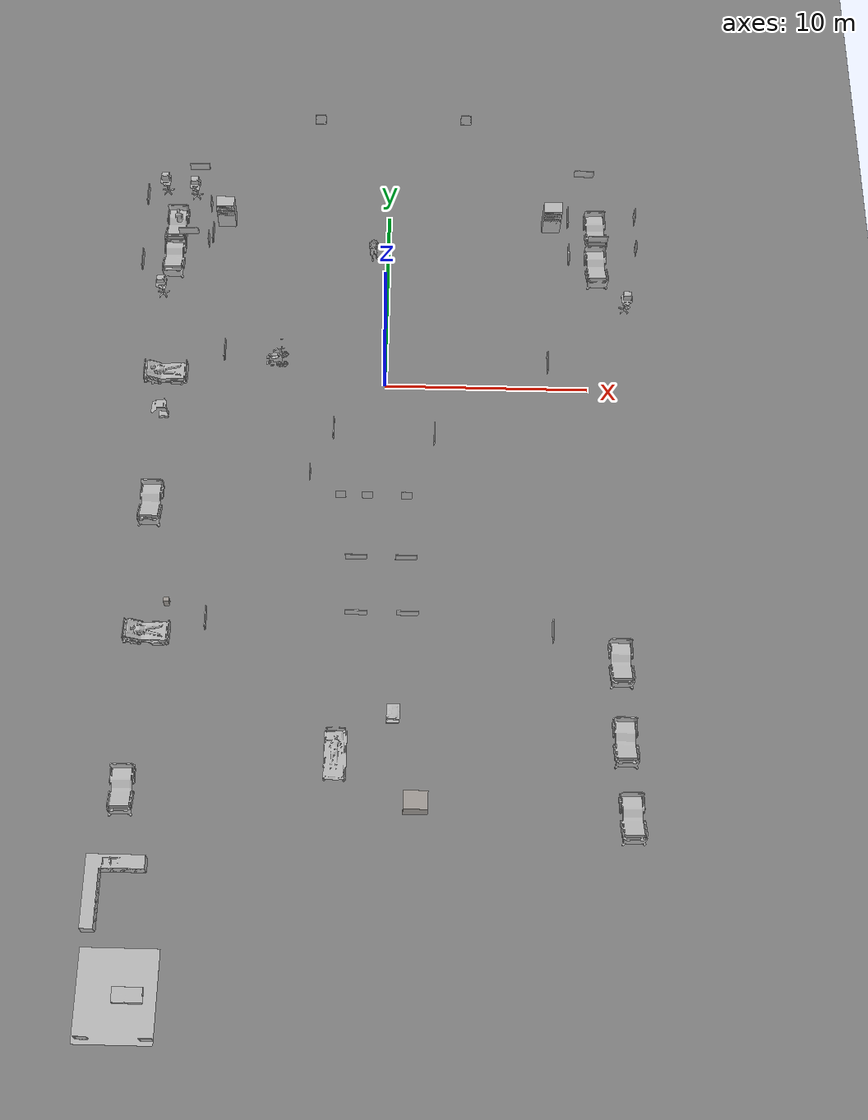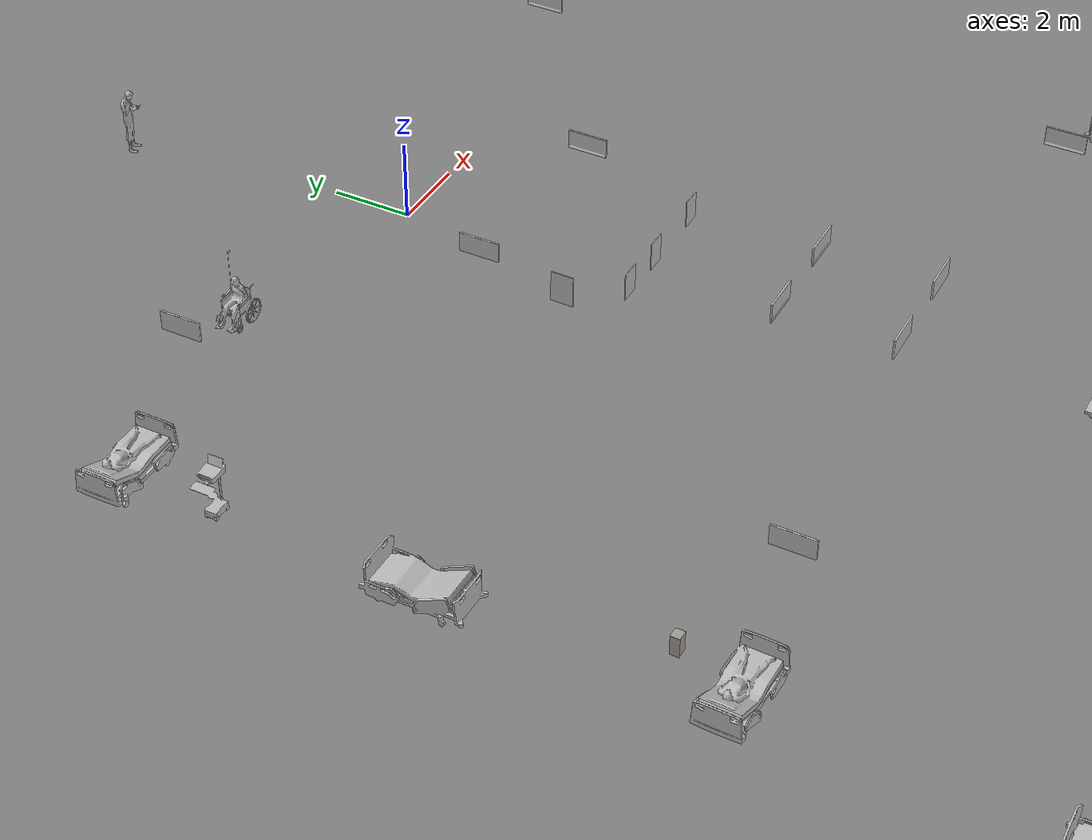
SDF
<sdf version="1.9">
 <world name="hospital">
  <physics name="4ms" type="ignored">
   <max_step_size>0.004</max_step_size>
   <real_time_factor>1</real_time_factor>
   <real_time_update_rate>250</real_time_update_rate>
  </physics>
  <plugin name="ignition::gazebo::systems::Physics" filename="ignition-gazebo-physics-system"/>
  <plugin name="ignition::gazebo::systems::UserCommands" filename="ignition-gazebo-user-commands-system"/>
  <plugin name="ignition::gazebo::systems::SceneBroadcaster" filename="ignition-gazebo-scene-broadcaster-system"/>
  <plugin name="ignition::gazebo::systems::Sensors" filename="ignition-gazebo-sensors-system">
   <render_engine>ogre2</render_engine>
  </plugin>
  <gravity>0 0 -9.8</gravity>
  <magnetic_field>6e-06 2.3e-05 -4.2e-05</magnetic_field>
  <atmosphere type="adiabatic"/>
  <scene><ambient>0.6 0.6 0.6 1</ambient><background>0.4 0.4 0.4 1</background><shadows>true</shadows></scene>
  <light name="sun" type="directional">
   <pose>0 0 10 0 0 0</pose>
   <intensity>1</intensity>
   <direction>-0.5 0.1 -0.9</direction>
   <diffuse>0.8 0.8 0.8 1</diffuse>
   <specular>0.2 0.2 0.2 1</specular>
   <attenuation>
    <range>1000</range>
    <linear>0.01</linear>
    <constant>0.9</constant>
    <quadratic>0.001</quadratic>
   </attenuation>
  </light>
  <model name="ground_plane">
   <static>true</static>
   <link name="link">
    <collision name="collision">
     <geometry><plane><normal>0 0 1</normal><size>100 100</size></plane></geometry>
     <surface><friction><ode><mu>100</mu><mu2>50</mu2></ode></friction></surface>
    </collision>
    <visual name="visual">
     <geometry><plane><normal>0 0 1</normal><size>100 100</size></plane></geometry>
     <material>
      <ambient>0.5 0.5 0.5 1</ambient>
      <diffuse>0.5 0.5 0.5 1</diffuse>
      <specular>0.1 0.1 0.1 1</specular>
     </material>
    </visual>
   </link>
  </model>
  <include>
   <uri>model://CGMClassic</uri>
   <name>CGMClassic_1</name>
   <static>true</static>
   <pose>11.1777 -18.4129 0 0 0 -3.13719</pose>
  </include>
  <include>
   <uri>model://CGMClassic</uri>
   <name>CGMClassic_2</name>
   <static>true</static>
   <pose>11.1179 -14.6493 0 0 0 -3.13599</pose>
  </include>
  <include>
   <uri>model://PatientWheelChair</uri>
   <name>PatientWheelChair_1</name>
   <static>true</static>
   <pose>-5.46091 1.23577 0 0 0 -1.54828</pose>
  </include>
  <include>
   <uri>model://CGMClassic</uri>
   <name>CGMClassic_3</name>
   <static>true</static>
   <pose>-11.2304 -21.1134 0 0 0 -3.11834</pose>
  </include>
  <include>
   <uri>model://aws_robomaker_residential_CoffeeTable_01</uri>
   <name>aws_robomaker_residential_CoffeeTable_01_1</name>
   <static>true</static>
   <pose>-10.2383 -29.9144 0 0 0 0</pose>
  </include>
  <include>
   <uri>model://aws_robomaker_residential_KitchenCabinet_01</uri>
   <name>aws_robomaker_residential_KitchenCabinet_01_1</name>
   <static>true</static>
   <pose>-11.1379 -25.6941 0 0 0 0</pose>
  </include>
  <include>
   <uri>model://aws_robomaker_residential_PortraitA_01</uri>
   <name>aws_robomaker_residential_PortraitA_01_1</name>
   <static>true</static>
   <pose>1.14738 -6.92303 1.41115 0 0 0</pose>
  </include>
  <include>
   <uri>model://aws_robomaker_residential_PortraitD_02</uri>
   <name>aws_robomaker_residential_PortraitD_02_1</name>
   <static>true</static>
   <pose>2.40772 -3.61975 1.54508 0 0 -1.57619</pose>
  </include>
  <include>
   <uri>model://aws_robomaker_residential_PortraitA_01</uri>
   <name>aws_robomaker_residential_PortraitA_01_2</name>
   <static>true</static>
   <pose>-0.706092 -6.93108 1.41115 0 0 0</pose>
  </include>
  <include>
   <uri>model://aws_robomaker_residential_PortraitA_01</uri>
   <name>aws_robomaker_residential_PortraitA_01_3</name>
   <static>true</static>
   <pose>-1.97245 -6.9216 1.41115 0 0 0</pose>
  </include>
  <include>
   <uri>model://aws_robomaker_residential_PortraitD_02</uri>
   <name>aws_robomaker_residential_PortraitD_02_2</name>
   <static>true</static>
   <pose>-2.43341 -3.38621 1.54508 0 0 1.57083</pose>
  </include>
  <include>
   <uri>model://ElderLadyPatient</uri>
   <name>ElderLadyPatient_1</name>
   <static>true</static>
   <pose>-10.9972 0.231354 0.001654 0 0 0</pose>
  </include>
  <include>
   <uri>model://ElderLadyPatient</uri>
   <name>ElderLadyPatient_2</name>
   <static>true</static>
   <pose>-10.8133 -13.5925 0.001657 0 0 -0.025052</pose>
  </include>
  <include>
   <uri>model://CGMClassic</uri>
   <name>CGMClassic_4</name>
   <static>true</static>
   <pose>-11.0878 -7.00992 0 0 0 3.1351</pose>
  </include>
  <include>
   <uri>model://aws_robomaker_residential_PortraitE_01</uri>
   <name>aws_robomaker_residential_PortraitE_01_1</name>
   <static>true</static>
   <pose>-9.06141 -31.9238 1.38136 0 0 0</pose>
  </include>
  <include>
   <uri>model://aws_robomaker_residential_PortraitE_01</uri>
   <name>aws_robomaker_residential_PortraitE_01_2</name>
   <static>true</static>
   <pose>-11.7398 -31.9011 1.38136 0 0 0</pose>
  </include>
  <include>
   <uri>model://aws_robomaker_residential_Carpet_01</uri>
   <name>aws_robomaker_residential_Carpet_01_1</name>
   <static>true</static>
   <pose>-10.7338 -29.9243 0 0 0 0</pose>
  </include>
  <include>
   <uri>model://CGMClassic</uri>
   <name>CGMClassic_5</name>
   <static>true</static>
   <pose>-11.0106 8.9505 -0.008203 -0.035019 -0.000392 3.13388</pose>
  </include>
  <include>
   <uri>model://CGMClassic</uri>
   <name>CGMClassic_6</name>
   <static>true</static>
   <pose>-11.025 7.10335 0 -0.035021 1.8e-05 -3.13762</pose>
  </include>
  <include>
   <uri>model://TrolleyBedPatient</uri>
   <name>TrolleyBedPatient_1</name>
   <static>true</static>
   <pose>-1.83202 -19.2612 0 0 0 0</pose>
  </include>
  <include>
   <uri>model://aws_robomaker_residential_PortraitD_01</uri>
   <name>aws_robomaker_residential_PortraitD_01_1</name>
   <static>true</static>
   <pose>-1.14723 -10.143 1.57344 0 0 0</pose>
  </include>
  <include>
   <uri>model://aws_robomaker_residential_PortraitD_01</uri>
   <name>aws_robomaker_residential_PortraitD_01_2</name>
   <static>true</static>
   <pose>1.16956 -10.1327 1.57344 0 0 0</pose>
  </include>
  <include>
   <uri>model://aws_robomaker_residential_PortraitD_01</uri>
   <name>aws_robomaker_residential_PortraitD_01_3</name>
   <static>true</static>
   <pose>1.2703 -12.9084 1.57344 0 0 -3.14134</pose>
  </include>
  <include>
   <uri>model://aws_robomaker_residential_PortraitD_01</uri>
   <name>aws_robomaker_residential_PortraitD_01_4</name>
   <static>true</static>
   <pose>-1.06108 -12.9155 1.57344 0 0 -3.14134</pose>
  </include>
  <include>
   <uri>model://aws_robomaker_residential_PortraitD_02</uri>
   <name>aws_robomaker_residential_PortraitD_02_3</name>
   <static>true</static>
   <pose>7.89294 -13.6155 1.54508 0 0 -1.57619</pose>
  </include>
  <include>
   <uri>model://aws_robomaker_residential_PortraitD_02</uri>
   <name>aws_robomaker_residential_PortraitD_02_4</name>
   <static>true</static>
   <pose>7.88791 0.445446 1.54508 0 0 -1.57619</pose>
  </include>
  <include>
   <uri>model://aws_robomaker_residential_PortraitD_02</uri>
   <name>aws_robomaker_residential_PortraitD_02_5</name>
   <static>true</static>
   <pose>-7.92095 0.84255 1.54508 0 0 1.57083</pose>
  </include>
  <include>
   <uri>model://aws_robomaker_residential_PortraitD_02</uri>
   <name>aws_robomaker_residential_PortraitD_02_6</name>
   <static>true</static>
   <pose>-7.90937 -13.3417 1.54508 0 0 1.57083</pose>
  </include>
  <include>
   <uri>model://aws_robomaker_residential_PortraitD_02</uri>
   <name>aws_robomaker_residential_PortraitD_02_7</name>
   <static>true</static>
   <pose>-12.3841 6.01232 1.54508 0 0 1.57083</pose>
  </include>
  <include>
   <uri>model://aws_robomaker_residential_PortraitD_02</uri>
   <name>aws_robomaker_residential_PortraitD_02_8</name>
   <static>true</static>
   <pose>-12.4276 9.98828 1.54508 0 0 1.57083</pose>
  </include>
  <include>
   <uri>model://aws_robomaker_residential_PortraitE_02</uri>
   <name>aws_robomaker_residential_PortraitE_02_1</name>
   <static>true</static>
   <pose>-9.08927 9.19494 1.84129 0 0 -1.5625</pose>
  </include>
  <include>
   <uri>model://aws_robomaker_residential_PortraitD_02</uri>
   <name>aws_robomaker_residential_PortraitD_02_9</name>
   <static>true</static>
   <pose>-8.94468 7.73571 1.54508 0 0 1.57083</pose>
  </include>
  <include>
   <uri>model://aws_robomaker_residential_PortraitE_02</uri>
   <name>aws_robomaker_residential_PortraitE_02_2</name>
   <static>true</static>
   <pose>-9.08305 7.04089 1.84129 0 0 -1.5625</pose>
  </include>
  <include>
   <uri>model://aws_robomaker_residential_PortraitD_01</uri>
   <name>aws_robomaker_residential_PortraitD_01_5</name>
   <static>true</static>
   <pose>-9.9148 11.9172 1.40573 0 0 0</pose>
  </include>
  <include>
   <uri>model://aws_robomaker_residential_PortraitD_01</uri>
   <name>aws_robomaker_residential_PortraitD_01_6</name>
   <static>true</static>
   <pose>-10.2134 7.89752 1.40573 0 0 0</pose>
  </include>
  <include>
   <uri>model://CGMClassic</uri>
   <name>CGMClassic_7</name>
   <static>true</static>
   <pose>10.6166 9.06291 -0.008203 -0.03501 0.000885 -3.11285</pose>
  </include>
  <include>
   <uri>model://CGMClassic</uri>
   <name>CGMClassic_8</name>
   <static>true</static>
   <pose>10.6006 6.90956 -0.008203 -0.035003 0.001133 -3.10576</pose>
  </include>
  <include>
   <uri>model://aws_robomaker_residential_PortraitD_02</uri>
   <name>aws_robomaker_residential_PortraitD_02_10</name>
   <static>true</static>
   <pose>9.06517 6.78742 1.54508 0 0 1.57083</pose>
  </include>
  <include>
   <uri>model://aws_robomaker_residential_PortraitD_02</uri>
   <name>aws_robomaker_residential_PortraitD_02_11</name>
   <static>true</static>
   <pose>9.06517 9.05858 1.54508 0 0 1.57083</pose>
  </include>
  <include>
   <uri>model://aws_robomaker_residential_PortraitE_02</uri>
   <name>aws_robomaker_residential_PortraitE_02_3</name>
   <static>true</static>
   <pose>12.3972 6.98849 1.84129 0 0 -1.5625</pose>
  </include>
  <include>
   <uri>model://aws_robomaker_residential_PortraitE_02</uri>
   <name>aws_robomaker_residential_PortraitE_02_4</name>
   <static>true</static>
   <pose>12.3972 8.87466 1.84129 0 0 -1.5625</pose>
  </include>
  <include>
   <uri>model://aws_robomaker_residential_PortraitE_02</uri>
   <name>aws_robomaker_residential_PortraitE_02_5</name>
   <static>true</static>
   <pose>-3.4385 -6.00525 1.84129 0 0 1.56777</pose>
  </include>
  <include>
   <uri>model://aws_robomaker_residential_PortraitD_01</uri>
   <name>aws_robomaker_residential_PortraitD_01_7</name>
   <static>true</static>
   <pose>10.596 7.88308 1.40573 0 0 0</pose>
  </include>
  <include>
   <uri>model://aws_robomaker_residential_PortraitD_01</uri>
   <name>aws_robomaker_residential_PortraitD_01_8</name>
   <static>true</static>
   <pose>9.98896 11.914 1.40573 0 0 0</pose>
  </include>
  <include>
   <uri>model://ParkingTrolleyMin</uri>
   <name>ParkingTrolleyMin_1</name>
   <static>true</static>
   <pose>0.715846 -17.1496 -0.000121 0 0 0</pose>
  </include>
  <include>
   <uri>model://PatientFSit</uri>
   <name>PatientFSit_1</name>
   <static>true</static>
   <pose>-10.8902 9.18683 0.228965 0 0 1.58161</pose>
  </include>
  <include>
   <uri>model://MaleVisitorOnPhone</uri>
   <name>MaleVisitorOnPhone_1</name>
   <static>true</static>
   <pose>-0.760316 7.58474 0 0 0 -1.14974</pose>
  </include>
  <include>
   <uri>model://CGMClassic</uri>
   <name>CGMClassic_9</name>
   <static>true</static>
   <pose>11.3613 -21.8867 0 0 0 -3.12292</pose>
  </include>
  <include>
   <uri>model://aws_robomaker_residential_PortraitE_02</uri>
   <name>aws_robomaker_residential_PortraitE_02_6</name>
   <static>true</static>
   <pose>-3.74211 14.8725 1.54379 0 0 0</pose>
  </include>
  <include>
   <uri>model://aws_robomaker_residential_PortraitE_01</uri>
   <name>aws_robomaker_residential_PortraitE_01_3</name>
   <static>true</static>
   <pose>3.85701 14.8779 1.69742 0 0 0</pose>
  </include>
  <include>
   <uri>model://XRayMachine</uri>
   <name>XRayMachine_1</name>
   <static>true</static>
   <pose>1.79424 -21.3329 0 0 0 0</pose>
  </include>
  <include>
   <uri>model://BloodPressureMonitor</uri>
   <name>BloodPressureMonitor_1</name>
   <static>true</static>
   <pose>-9.96258 -11.9361 0 0 0 0</pose>
  </include>
  <include>
   <uri>model://BMWCart</uri>
   <name>BMWCart_1</name>
   <static>true</static>
   <pose>-10.931 -1.9483 0 0 0 0</pose>
  </include>
  <include>
   <uri>model://BPCart</uri>
   <name>BPCart_1</name>
   <static>true</static>
   <pose>-10.1788 11.173 0.003446 0 0 0.003096</pose>
  </include>
  <include>
   <uri>model://BPCart</uri>
   <name>BPCart_2</name>
   <static>true</static>
   <pose>12.0072 4.64765 0 0 0 0</pose>
  </include>
  <include>
   <uri>model://BPCart</uri>
   <name>BPCart_3</name>
   <static>true</static>
   <pose>-11.7236 11.4294 0 0 0 0</pose>
  </include>
  <include>
   <uri>model://BPCart</uri>
   <name>BPCart_4</name>
   <static>true</static>
   <pose>-11.4703 5.05999 0.003446 0 0 0.003096</pose>
  </include>
  <include>
   <uri>model://VendingMachine</uri>
   <name>VendingMachine_1</name>
   <static>true</static>
   <pose>-8.45694 9.63064 0 0 0 0</pose>
  </include>
  <include>
   <uri>model://VendingMachine</uri>
   <name>VendingMachine_2</name>
   <static>true</static>
   <pose>8.35378 9.64852 0 0 0 0</pose>
  </include>
 </world>
</sdf>

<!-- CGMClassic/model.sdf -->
<sdf version="1.6">
  <model name="CGMClassic">
   <static>true</static>
    <link name="body">
      <pose>0 0 0 0 0 0</pose>

      <visual name="visual">
        <geometry>
          <mesh>
            <uri>model://CGMClassic/meshes/CGMClassic.obj</uri>
            <scale>0.01 0.01 0.01</scale>
          </mesh>
        </geometry>
      </visual>

      <collision name="collision">
        <geometry>
          <mesh>
            <uri>model://CGMClassic/meshes/CGMClassic.obj</uri>
            <scale>0.01 0.01 0.01</scale>
          </mesh>
        </geometry>
      </collision>

    </link>
  </model>
</sdf>

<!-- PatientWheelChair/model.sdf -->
<sdf version="1.6">
  <model name="PatientWheelChair">
   <static>true</static>
    <link name="body">
      <pose>0 0 0 0 0 0</pose>

      <visual name="visual">
        <geometry>
          <mesh>
            <uri>model://PatientWheelChair/meshes/PatientWheelChair.obj</uri>
          </mesh>
        </geometry>
      </visual>

      <collision name="collision">
        <geometry>
          <mesh>
            <uri>model://PatientWheelChair/meshes/PatientWheelChair_Col.obj</uri>
          </mesh>
        </geometry>
      </collision>

    </link>
  </model>
</sdf>

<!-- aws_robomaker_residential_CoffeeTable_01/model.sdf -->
<sdf version="1.6">
  <model name="aws_robomaker_residential_CoffeeTable_01">
    <link name="link">
      <inertial>
        <mass>21.7</mass>

        <inertia>
          <ixx>0.8137499999999998</ixx>
          <ixy>0</ixy>
          <ixz>0</ixz>
          <iyy>2.76675</iyy>
          <iyz>0</iyz>
          <izz>3.254</izz>
        </inertia>

      </inertial>

      <collision name="collision">
        <pose>0 0 0.225 0 0 0</pose>
        <geometry>
          <box><size>1.2 0.6 0.45</size></box>
        </geometry>
      </collision>

      <visual name="visual">
	    <geometry>
          <mesh>
            <uri>model://aws_robomaker_residential_CoffeeTable_01/meshes/aws_CoffeeTable_01_visual.DAE</uri>
          </mesh>
        </geometry>
      <meta> <layer> 1 </layer></meta>
</visual>
    </link>
    <static>1</static>
  </model>
</sdf>

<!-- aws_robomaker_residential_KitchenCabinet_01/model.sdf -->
<sdf version="1.6">
  <model name="aws_robomaker_residential_KitchenCabinet_01">
    <link name="link">
      <inertial>
        <mass>1</mass>
        <inertia>
          <ixx>0.166667</ixx>
          <ixy>0</ixy>
          <ixz>0</ixz>
          <iyy>0.166667</iyy>
          <iyz>0</iyz>
          <izz>0.166667</izz>
        </inertia>
      </inertial>
      <collision name="collision">
        <pose>0 0 0.45 0 0 0</pose>
        <geometry>
          <box><size>2.4 0.55 0.9</size></box>
        </geometry>
      </collision>
      <visual name="visual">
	    <geometry>
          <mesh>
            <uri>model://aws_robomaker_residential_KitchenCabinet_01/meshes/aws_KitchenCabinet_01_visual.DAE</uri>
          </mesh>
        </geometry>
      <meta> <layer> 1 </layer></meta>
</visual>
    </link>

    <static>1</static>
  </model>
</sdf>

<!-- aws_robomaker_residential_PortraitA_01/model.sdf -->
<sdf version="1.6">
  <model name="aws_robomaker_residential_PortraitA_01">
    <link name="link">
      <inertial>
        <mass>1</mass>
      </inertial>

      <visual name="visual">
	    <geometry>
          <mesh>
            <uri>model://aws_robomaker_residential_PortraitA_01/meshes/aws_PortraitA_01_visual.DAE</uri>
          </mesh>
        </geometry>
      <meta> <layer> 2 </layer></meta>
</visual>
    </link>
	<static>1</static>
  </model>
</sdf>

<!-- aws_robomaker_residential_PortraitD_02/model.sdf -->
<sdf version="1.6">
  <model name="aws_robomaker_residential_PortraitD_02">
    <link name="link">

      <inertial>
        <mass>1.5</mass>
      </inertial>

      <visual name="visual">
	    <geometry>
          <mesh>
            <uri>model://aws_robomaker_residential_PortraitD_02/meshes/aws_PortraitD_01_visual.DAE</uri>
          </mesh>
        </geometry>
      <meta> <layer> 2 </layer></meta>
</visual>
    </link>
	<static>1</static>
  </model>
</sdf>

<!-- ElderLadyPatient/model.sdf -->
<sdf version="1.6">
  <model name='ElderLadyPatient'>
    <link name="body">
      <pose>0 0 0 0 0 0</pose>

      <visual name="visual">
        <geometry>
          <mesh>
            <uri>model://ElderLadyPatient/meshes/ElderFemale.obj</uri>
          </mesh>
        </geometry>
      </visual>

    </link>
  </model>
</sdf>

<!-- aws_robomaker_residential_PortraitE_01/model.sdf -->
<sdf version="1.6">
  <model name="aws_robomaker_residential_PortraitE_01">
    <link name="link">
      <inertial>
        <mass>1</mass>
      </inertial>

      <visual name="visual">
	    <geometry>
          <mesh>
            <uri>model://aws_robomaker_residential_PortraitE_01/meshes/aws_PortraitE_01_visual.DAE</uri>
          </mesh>
        </geometry>
      <meta> <layer> 2 </layer></meta>
</visual>
    </link>
	<static>1</static>
  </model>
</sdf>

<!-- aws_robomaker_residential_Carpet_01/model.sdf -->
<sdf version="1.6">
  <model name="aws_robomaker_residential_Carpet_01">
    <link name="link">
      <inertial>
        <mass>8.1</mass>
      </inertial>

      <visual name="visual">
	    <geometry>
          <mesh>
            <uri>model://aws_robomaker_residential_Carpet_01/meshes/aws_Carpet_01_visual.DAE</uri>
          </mesh>
        </geometry>
      <meta> <layer> 1 </layer></meta>
</visual>
    </link>

    <static>1</static>

  </model>
</sdf>

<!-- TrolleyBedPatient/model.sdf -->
<sdf version="1.6">
  <model name="TrolleyBedPatient">
   <static>true</static>
    <link name="body">
      <pose>0 0 0 0 0 0</pose>

      <visual name="visual">
        <geometry>
          <mesh>
            <uri>model://TrolleyBedPatient/meshes/TrolleyBedPatient.obj</uri>
          </mesh>
        </geometry>
      </visual>

    </link>
  </model>
</sdf>

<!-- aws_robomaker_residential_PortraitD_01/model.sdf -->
<sdf version="1.6">
  <model name="aws_robomaker_residential_PortraitD_01">
    <link name="link">

      <inertial>
        <mass>1.5</mass>
      </inertial>

      <visual name="visual">
	    <geometry>
          <mesh>
            <uri>model://aws_robomaker_residential_PortraitD_01/meshes/aws_PortraitD_01_visual.DAE</uri>
          </mesh>
        </geometry>
      <meta> <layer> 2 </layer></meta>
</visual>
    </link>
	<static>1</static>
  </model>
</sdf>

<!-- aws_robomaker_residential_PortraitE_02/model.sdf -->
<sdf version="1.6">
  <model name="aws_robomaker_residential_PortraitE_02">
    <link name="link">
      <inertial>
        <mass>1</mass>
      </inertial>

      <visual name="visual">
	    <geometry>
          <mesh>
            <uri>model://aws_robomaker_residential_PortraitE_02/meshes/aws_PortraitE_01_visual.DAE</uri>
          </mesh>
        </geometry>
      <meta> <layer> 2 </layer></meta>
</visual>
    </link>
	<static>1</static>
  </model>
</sdf>

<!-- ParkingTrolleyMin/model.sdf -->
<sdf version="1.6">
  <model name="ParkingTrolleyMin">
    <link name="body">
      <pose>0 0 0 0 0 0</pose>

        <visual name="visual">
          <pose>0 0 0 0 0 0</pose>
          <geometry>
            <mesh><uri>model://ParkingTrolleyMin/meshes/trolleymin.obj</uri></mesh>
          </geometry>
        </visual>

        <collision name="collision">
          <pose>0 0 0 0 0 0</pose>
          <geometry>
            <mesh><uri>model://ParkingTrolleyMin/meshes/trolleymin.obj</uri></mesh>
          </geometry>
        </collision>

    </link>
  </model>
</sdf>

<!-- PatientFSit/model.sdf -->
<sdf version="1.6">
  <model name="PatientFSit">
   <static>true</static>
    <link name="body">
      <pose>0 0 0 0 0 0</pose>

      <visual name="visual">
        <geometry>
          <mesh>
            <uri>model://PatientFSit/meshes/PatientFSit.obj</uri>
          </mesh>
        </geometry>
      </visual>

    </link>
  </model>
</sdf>

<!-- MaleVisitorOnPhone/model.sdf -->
<sdf version="1.6">
  <model name="MaleVisitorOnPhone">
   <static>true</static>
    <link name="body">
      <pose>0 0 0 0 0 0</pose>

      <visual name="visual">
        <geometry>
          <mesh>
            <uri>model://MaleVisitorOnPhone/meshes/MaleVisitorStatic.obj</uri>
          </mesh>
        </geometry>
      </visual>

    </link>
  </model>
</sdf>

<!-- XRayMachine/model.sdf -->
<sdf version="1.6">
  <model name="XRayMachine">
    <static>true</static>
    <link name="link">
      <collision name="col">
        <geometry>
          <box>
            <size>1.1 0.85 1.65</size>
          </box>
        </geometry>
      </collision>
      <visual name="vis">
        <geometry>
          <box>
            <size>1.1 0.85 1.65</size>
          </box>
        </geometry>
        <material>
          <ambient>0.62 0.6 0.58 1</ambient>
          <diffuse>0.62 0.6 0.58 1</diffuse>
        </material>
      </visual>
    </link>
  </model>
</sdf>

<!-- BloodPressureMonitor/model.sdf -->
<sdf version="1.6">
  <model name="BloodPressureMonitor">
    <static>true</static>
    <link name="link">
      <collision name="col">
        <geometry>
          <box>
            <size>0.25 0.22 0.95</size>
          </box>
        </geometry>
      </collision>
      <visual name="vis">
        <geometry>
          <box>
            <size>0.25 0.22 0.95</size>
          </box>
        </geometry>
        <material>
          <ambient>0.62 0.6 0.58 1</ambient>
          <diffuse>0.62 0.6 0.58 1</diffuse>
        </material>
      </visual>
    </link>
  </model>
</sdf>

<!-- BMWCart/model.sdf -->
<sdf version="1.6">
  <model name='BMWCart'>
    <link name="body">
      <pose>0 0 0 0 0 0</pose>

      <visual name="visual">
        <geometry>
          <mesh>
            <uri>model://BMWCart/meshes/Cart_BMW.obj</uri>
          </mesh>
        </geometry>
      </visual>

      <collision name="collision">
        <geometry>
          <mesh>
            <uri>model://BMWCart/meshes/Cart_BMW_Col.obj</uri>
          </mesh>
        </geometry>
      </collision>

    </link>
  </model>
</sdf>

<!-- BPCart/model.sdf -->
<sdf version="1.6">
  <model name='BPCart'>
    <link name="body">
      <pose>0 0 0 0 0 0</pose>

      <visual name="visual">
        <geometry>
          <mesh>
            <uri>model://BPCart/meshes/Cart_BP.obj</uri>
          </mesh>
        </geometry>
      </visual>

      <collision name="collision">
        <geometry>
          <mesh>
            <uri>model://BPCart/meshes/Cart_BP_Col.obj</uri>
          </mesh>
        </geometry>
      </collision>

    </link>
  </model>
</sdf>

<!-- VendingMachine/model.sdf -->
<sdf version="1.6">
  <model name="VendingMachine">
    <link name="body">
      <pose>0 0 0 0 0 0</pose>

      <visual name="visual">
        <geometry>
          <mesh>
            <uri>model://VendingMachine/meshes/vend.obj</uri>
          </mesh>
        </geometry>
      </visual>

      <collision name="collision">
        <geometry>
          <mesh>
            <uri>model://VendingMachine/meshes/vend.obj</uri>
          </mesh>
        </geometry>
      </collision>

    </link>
  </model>
</sdf>
